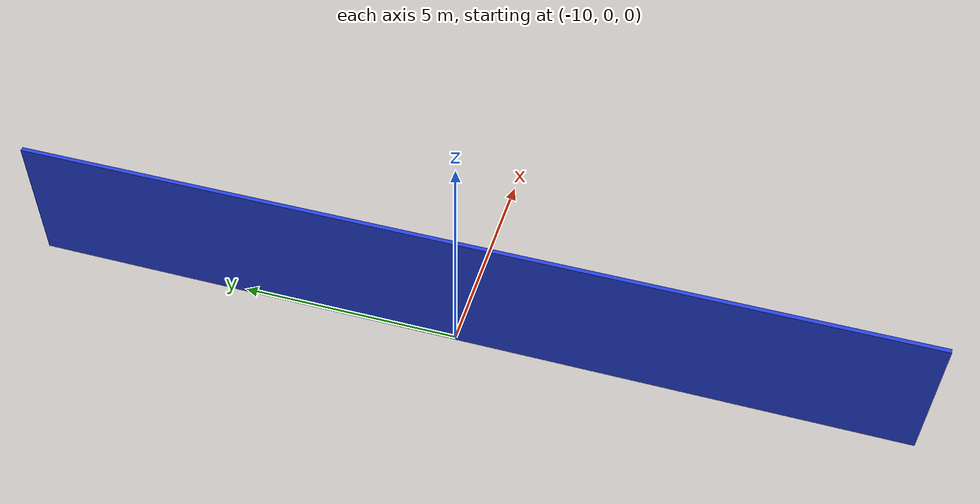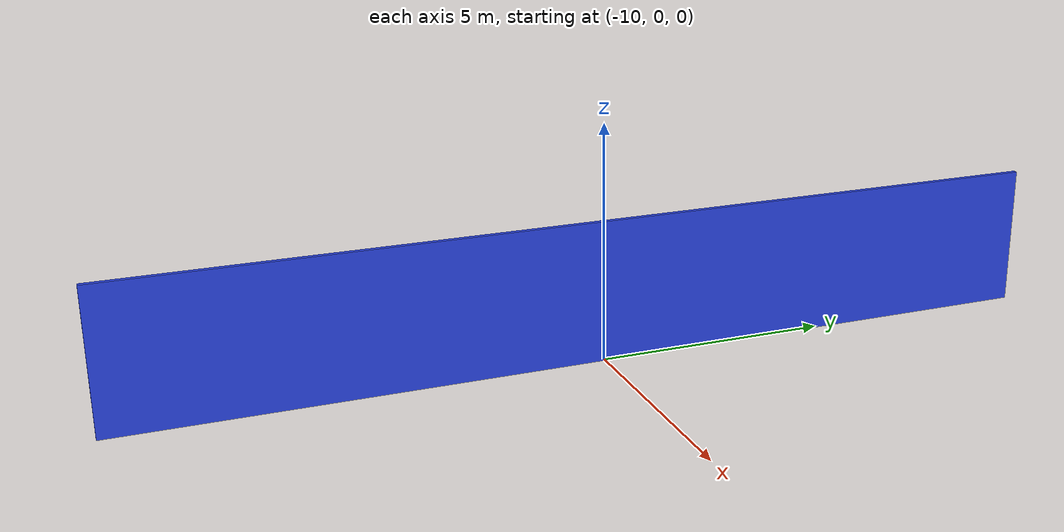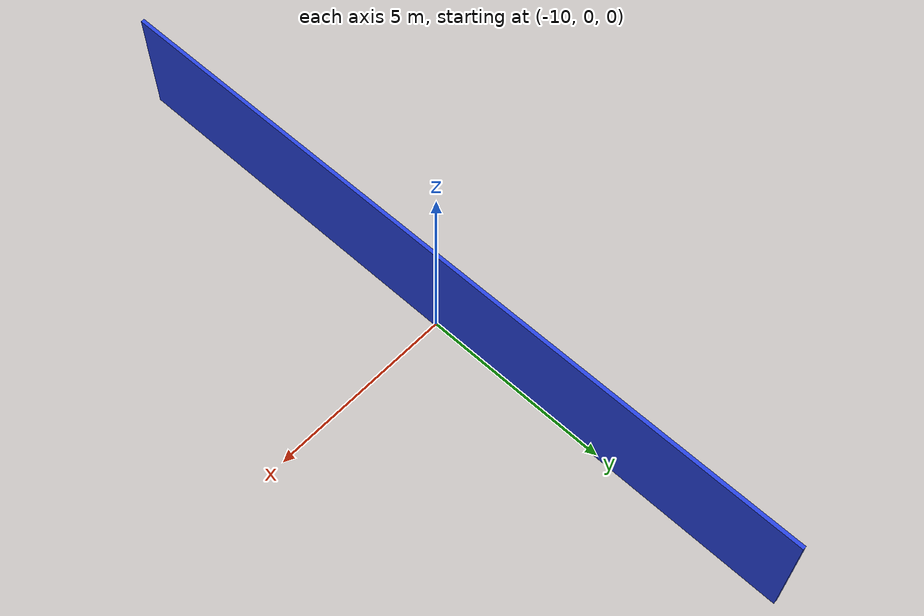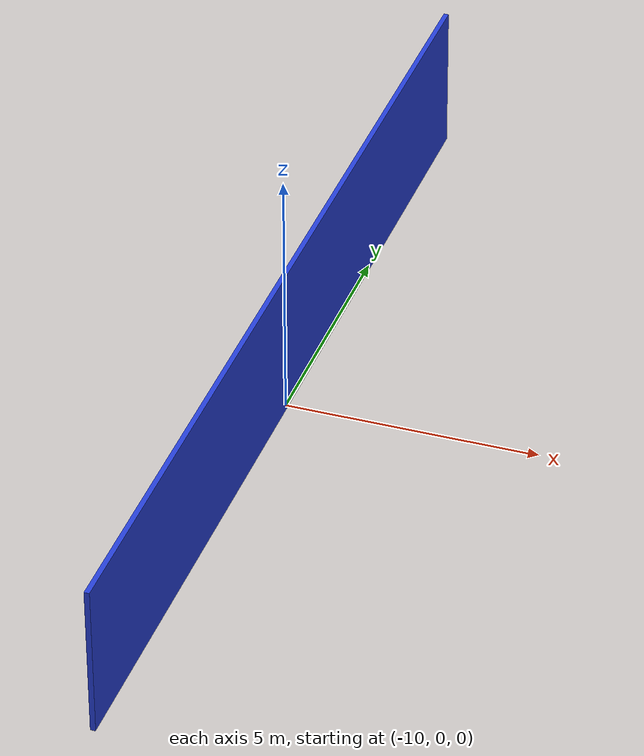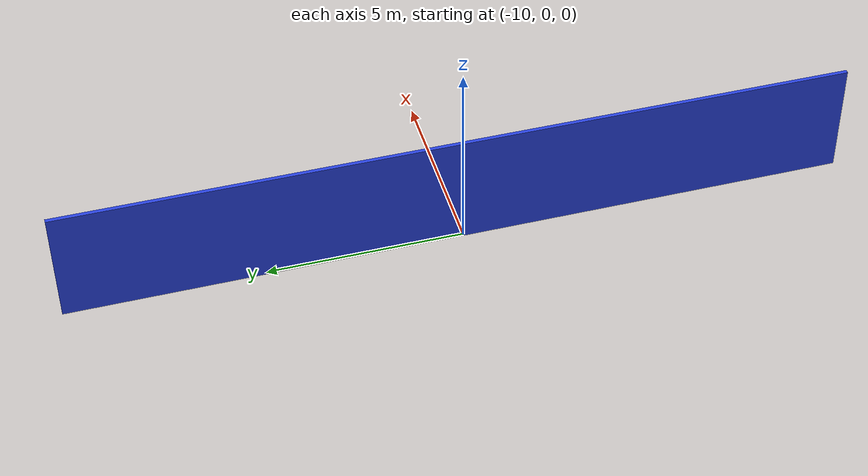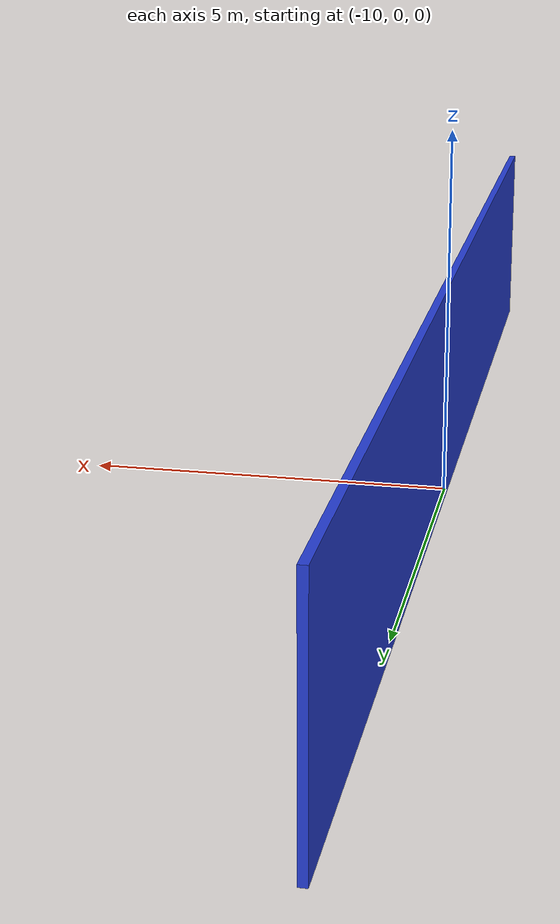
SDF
<sdf version="1.9">
 <world name="indoor_room">
  <model name="ground_plane">
   <static>true</static>
   <link name="link">
    <collision name="collision">
     <geometry><plane><normal>0 0 1</normal><size>20 20</size></plane></geometry>
    </collision>
   </link>
  </model>
  <model name="wall_south">
   <static>true</static>
   <pose>-10 0 1.5 0 0 0</pose>
   <link name="link">
    <collision name="c"><geometry><box><size>0.1 20 3</size></box></geometry></collision>
    <visual name="v">
     <geometry><box><size>0.1 20 3</size></box></geometry>
     <material><diffuse>0.15 0.25 0.85 1</diffuse><ambient>0.15 0.25 0.85 1</ambient></material>
    </visual>
   </link>
  </model>
 </world>
</sdf>
